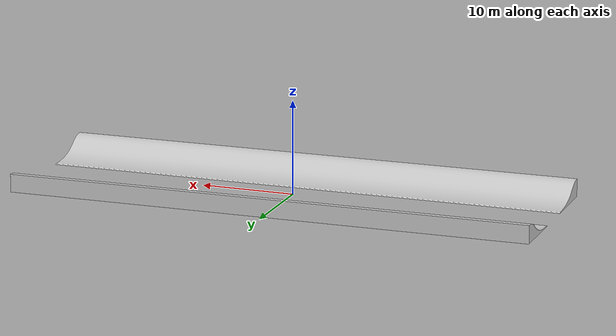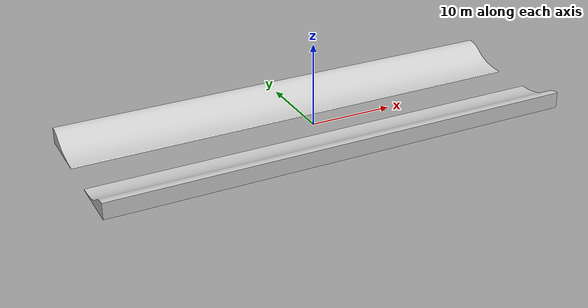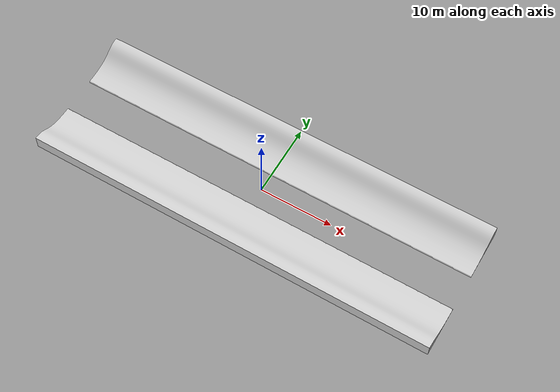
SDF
<?xml version="1.0" ?>
<sdf version="1.6">
  <model name="side_slope">
    <static>true</static>
    <link name="slope_1">
      <pose>0 -5.778 0 0 0 0</pose>
      <collision name="collision">
        <geometry>
          <mesh>
            <uri>model://side_slope/meshes/side_slope.dae</uri>
            <scale>28 1.5 1.5</scale>
          </mesh>
        </geometry>
      </collision>
      <visual name="visual">
        <geometry>
          <mesh>
            <uri>model://side_slope/meshes/side_slope.dae</uri>
            <scale>28 1.5 1.5</scale>
          </mesh>
        </geometry>
        <material>
          <ambient>0.7 0.7 0.7 1</ambient>
          <diffuse>0.8 0.8 0.8 1</diffuse>
          <specular>0.1 0.1 0.1 1</specular>
          <emissive>0 0 0 0</emissive>
        </material>
      </visual>
    </link>

    <link name="slope_2">
      <pose>0 5.778 0 0 0 3.1416</pose>
      <collision name="collision">
        <geometry>
          <mesh>
            <uri>model://side_slope/meshes/side_slope.dae</uri>
            <scale>28 1.5 1.5</scale>
          </mesh>
        </geometry>
      </collision>
      <visual name="visual">
        <geometry>
          <mesh>
            <uri>model://side_slope/meshes/side_slope.dae</uri>
            <scale>28 1.5 1.5</scale>
          </mesh>
        </geometry>
        <material>
          <ambient>0.7 0.7 0.7 1</ambient>
          <diffuse>0.8 0.8 0.8 1</diffuse>
          <specular>0.1 0.1 0.1 1</specular>
          <emissive>0 0 0 0</emissive>
        </material>
      </visual>
    </link>
  </model>
</sdf>
